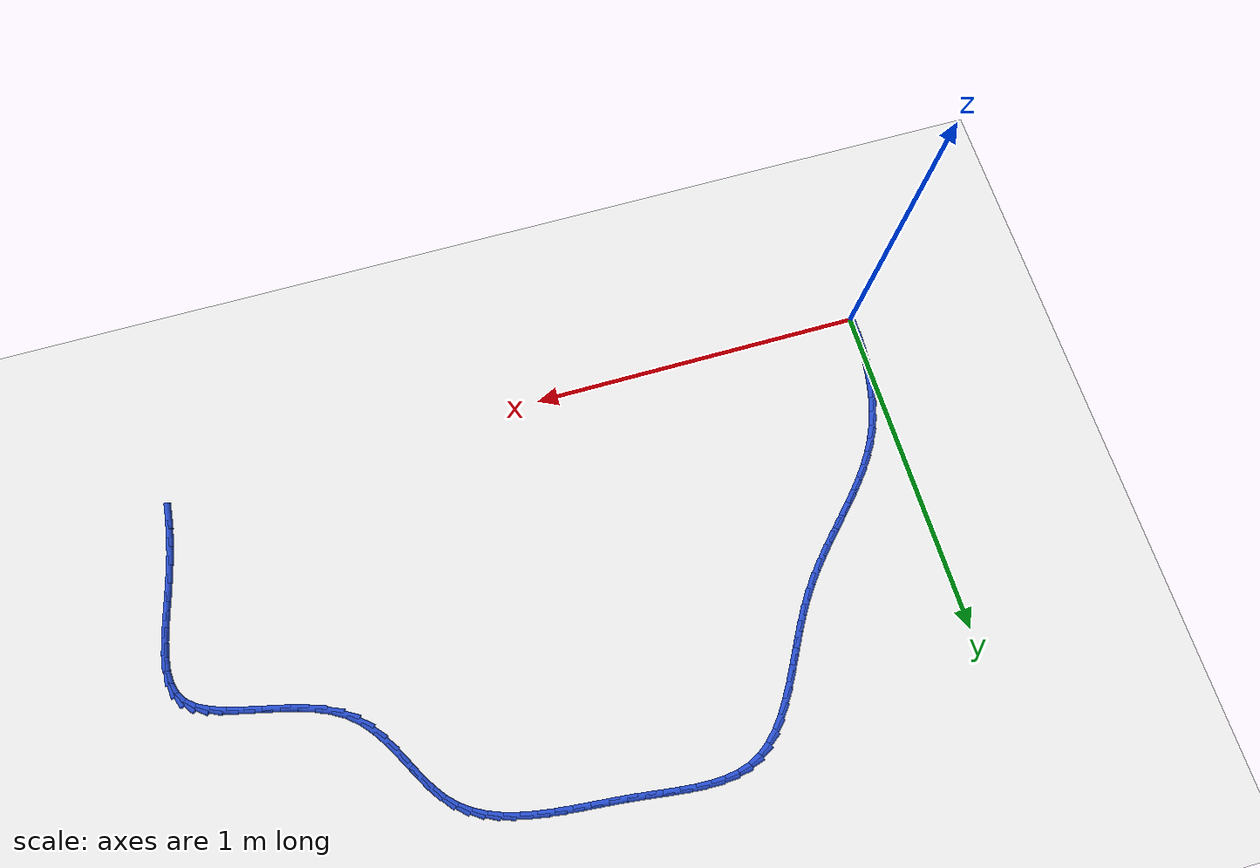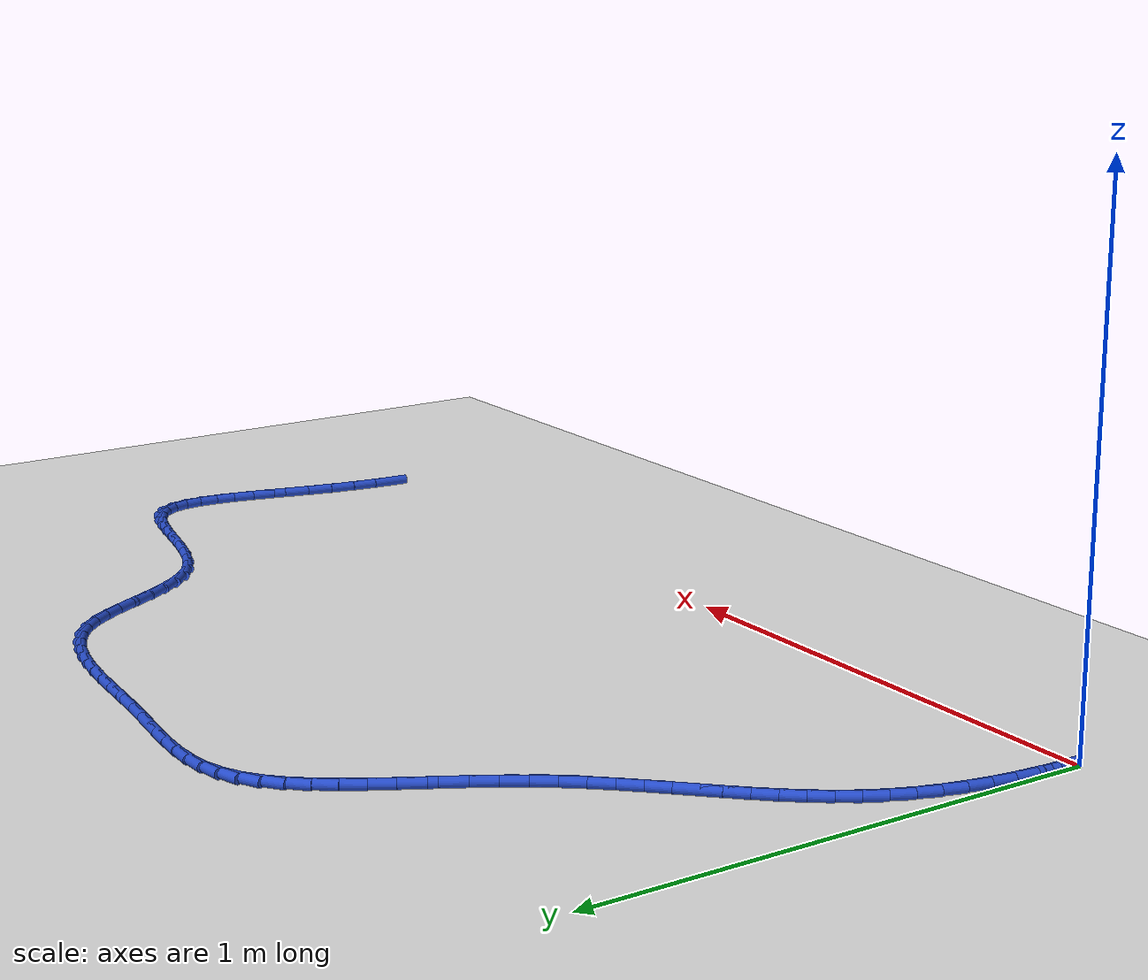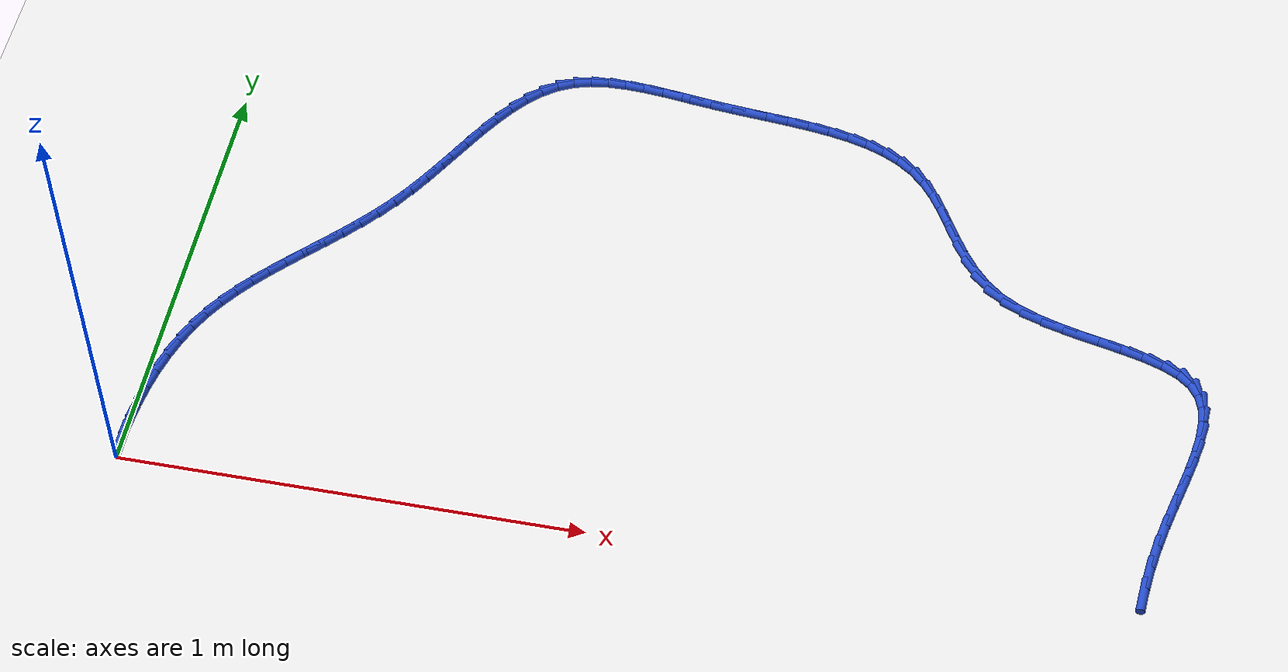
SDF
<sdf version="1.6">
 <world name="default">
  <model name="ground_plane">
   <static>1</static>
   <link name="link">
    <collision name="collision">
     <geometry><plane><normal>0 0 1</normal><size>100 100</size></plane></geometry>
     <surface><friction><ode><mu>100</mu><mu2>50</mu2></ode></friction></surface>
    </collision>
    <visual name="visual">
     <cast_shadows>0</cast_shadows>
     <geometry><plane><normal>0 0 1</normal><size>100 100</size></plane></geometry>
     <material>
      <script><uri>file://media/materials/scripts/gazebo.material</uri><name>Gazebo/WhiteGlow</name></script>
     </material>
    </visual>
   </link>
  </model>
  <model name="line">
   <link name="link_2">
    <pose>0.0016462573029969371 0.09117754841347032 0.01 0 1.57 1.4847414891385309</pose>
    <collision name="collision">
     <geometry><cylinder><radius>0.01</radius><length>0.08</length></cylinder></geometry>
    </collision>
    <visual name="visual">
     <material>
      <script><name>Gazebo/Blue</name><uri>file://media/materials/scripts/gazebo.material</uri></script>
     </material>
     <geometry><cylinder><radius>0.01</radius><length>0.08</length></cylinder></geometry>
    </visual>
   </link>
   <link name="link_3">
    <pose>0.005586826914313091 0.13685583567634896 0.01 0 1.57 1.434894409735333</pose>
    <collision name="collision">
     <geometry><cylinder><radius>0.01</radius><length>0.08</length></cylinder></geometry>
    </collision>
    <visual name="visual">
     <material>
      <script><name>Gazebo/Blue</name><uri>file://media/materials/scripts/gazebo.material</uri></script>
     </material>
     <geometry><cylinder><radius>0.01</radius><length>0.08</length></cylinder></geometry>
    </visual>
   </link>
   <link name="link_4">
    <pose>0.011783318623301148 0.18217010670031847 0.01 0 1.57 1.3807547910294875</pose>
    <collision name="collision">
     <geometry><cylinder><radius>0.01</radius><length>0.08</length></cylinder></geometry>
    </collision>
    <visual name="visual">
     <material>
      <script><name>Gazebo/Blue</name><uri>file://media/materials/scripts/gazebo.material</uri></script>
     </material>
     <geometry><cylinder><radius>0.01</radius><length>0.08</length></cylinder></geometry>
    </visual>
   </link>
   <link name="link_5">
    <pose>0.020368953523306203 0.2268025927781254 0.01 0 1.57 1.3215133082210457</pose>
    <collision name="collision">
     <geometry><cylinder><radius>0.01</radius><length>0.08</length></cylinder></geometry>
    </collision>
    <visual name="visual">
     <material>
      <script><name>Gazebo/Blue</name><uri>file://media/materials/scripts/gazebo.material</uri></script>
     </material>
     <geometry><cylinder><radius>0.01</radius><length>0.08</length></cylinder></geometry>
    </visual>
   </link>
   <link name="link_6">
    <pose>0.03147695270767335 0.27043552520251624 0.01 0 1.57 1.2563290872651045</pose>
    <collision name="collision">
     <geometry><cylinder><radius>0.01</radius><length>0.08</length></cylinder></geometry>
    </collision>
    <visual name="visual">
     <material>
      <script><name>Gazebo/Blue</name><uri>file://media/materials/scripts/gazebo.material</uri></script>
     </material>
     <geometry><cylinder><radius>0.01</radius><length>0.08</length></cylinder></geometry>
    </visual>
   </link>
   <link name="link_7">
    <pose>0.045240537269747666 0.3127511352662374 0.01 0 1.57 1.1843666638737467</pose>
    <collision name="collision">
     <geometry><cylinder><radius>0.01</radius><length>0.08</length></cylinder></geometry>
    </collision>
    <visual name="visual">
     <material>
      <script><name>Gazebo/Blue</name><uri>file://media/materials/scripts/gazebo.material</uri></script>
     </material>
     <geometry><cylinder><radius>0.01</radius><length>0.08</length></cylinder></geometry>
    </visual>
   </link>
   <link name="link_8">
    <pose>0.06179292830287421 0.3534316542620354 0.01 0 1.57 1.1049145525194537</pose>
    <collision name="collision">
     <geometry><cylinder><radius>0.01</radius><length>0.08</length></cylinder></geometry>
    </collision>
    <visual name="visual">
     <material>
      <script><name>Gazebo/Blue</name><uri>file://media/materials/scripts/gazebo.material</uri></script>
     </material>
     <geometry><cylinder><radius>0.01</radius><length>0.08</length></cylinder></geometry>
    </visual>
   </link>
   <link name="link_9">
    <pose>0.0812659469510282 0.3921611291601194 0.01 0 1.57 1.0234635631427023</pose>
    <collision name="collision">
     <geometry><cylinder><radius>0.01</radius><length>0.08</length></cylinder></geometry>
    </collision>
    <visual name="visual">
     <material>
      <script><name>Gazebo/Blue</name><uri>file://media/materials/scripts/gazebo.material</uri></script>
     </material>
     <geometry><cylinder><radius>0.01</radius><length>0.08</length></cylinder></geometry>
    </visual>
   </link>
   <link name="link_10">
    <pose>0.10362177506592832 0.4288436222014961 0.01 0 1.57 0.9525425751469052</pose>
    <collision name="collision">
     <geometry><cylinder><radius>0.01</radius><length>0.08</length></cylinder></geometry>
    </collision>
    <visual name="visual">
     <material>
      <script><name>Gazebo/Blue</name><uri>file://media/materials/scripts/gazebo.material</uri></script>
     </material>
     <geometry><cylinder><radius>0.01</radius><length>0.08</length></cylinder></geometry>
    </visual>
   </link>
   <link name="link_11">
    <pose>0.12849299767693662 0.4638106693165531 0.01 0 1.57 0.8946881497671825</pose>
    <collision name="collision">
     <geometry><cylinder><radius>0.01</radius><length>0.08</length></cylinder></geometry>
    </collision>
    <visual name="visual">
     <material>
      <script><name>Gazebo/Blue</name><uri>file://media/materials/scripts/gazebo.material</uri></script>
     </material>
     <geometry><cylinder><radius>0.01</radius><length>0.08</length></cylinder></geometry>
    </visual>
   </link>
   <link name="link_12">
    <pose>0.1554743128022478 0.4974429443500773 0.01 0 1.57 0.8503619094364911</pose>
    <collision name="collision">
     <geometry><cylinder><radius>0.01</radius><length>0.08</length></cylinder></geometry>
    </collision>
    <visual name="visual">
     <material>
      <script><name>Gazebo/Blue</name><uri>file://media/materials/scripts/gazebo.material</uri></script>
     </material>
     <geometry><cylinder><radius>0.01</radius><length>0.08</length></cylinder></geometry>
    </visual>
   </link>
   <link name="link_13">
    <pose>0.1841604184600568 0.530121121146856 0.01 0 1.57 0.8195151563991074</pose>
    <collision name="collision">
     <geometry><cylinder><radius>0.01</radius><length>0.08</length></cylinder></geometry>
    </collision>
    <visual name="visual">
     <material>
      <script><name>Gazebo/Blue</name><uri>file://media/materials/scripts/gazebo.material</uri></script>
     </material>
     <geometry><cylinder><radius>0.01</radius><length>0.08</length></cylinder></geometry>
    </visual>
   </link>
   <link name="link_14">
    <pose>0.2141460126685584 0.5622258735516754 0.01 0 1.57 0.8018354752819631</pose>
    <collision name="collision">
     <geometry><cylinder><radius>0.01</radius><length>0.08</length></cylinder></geometry>
    </collision>
    <visual name="visual">
     <material>
      <script><name>Gazebo/Blue</name><uri>file://media/materials/scripts/gazebo.material</uri></script>
     </material>
     <geometry><cylinder><radius>0.01</radius><length>0.08</length></cylinder></geometry>
    </visual>
   </link>
   <link name="link_15">
    <pose>0.2450257934459474 0.594137875409323 0.01 0 1.57 0.7969192548506218</pose>
    <collision name="collision">
     <geometry><cylinder><radius>0.01</radius><length>0.08</length></cylinder></geometry>
    </collision>
    <visual name="visual">
     <material>
      <script><name>Gazebo/Blue</name><uri>file://media/materials/scripts/gazebo.material</uri></script>
     </material>
     <geometry><cylinder><radius>0.01</radius><length>0.08</length></cylinder></geometry>
    </visual>
   </link>
   <link name="link_16">
    <pose>0.27639445881041885 0.6262378005645857 0.01 0 1.57 0.8043643810675651</pose>
    <collision name="collision">
     <geometry><cylinder><radius>0.01</radius><length>0.08</length></cylinder></geometry>
    </collision>
    <visual name="visual">
     <material>
      <script><name>Gazebo/Blue</name><uri>file://media/materials/scripts/gazebo.material</uri></script>
     </material>
     <geometry><cylinder><radius>0.01</radius><length>0.08</length></cylinder></geometry>
    </visual>
   </link>
   <link name="link_17">
    <pose>0.3078467067801674 0.6589063228622505 0.01 0 1.57 0.8237936344675746</pose>
    <collision name="collision">
     <geometry><cylinder><radius>0.01</radius><length>0.08</length></cylinder></geometry>
    </collision>
    <visual name="visual">
     <material>
      <script><name>Gazebo/Blue</name><uri>file://media/materials/scripts/gazebo.material</uri></script>
     </material>
     <geometry><cylinder><radius>0.01</radius><length>0.08</length></cylinder></geometry>
    </visual>
   </link>
   <link name="link_18">
    <pose>0.3389772353733878 0.6925241161471037 0.01 0 1.57 0.854821905325866</pose>
    <collision name="collision">
     <geometry><cylinder><radius>0.01</radius><length>0.08</length></cylinder></geometry>
    </collision>
    <visual name="visual">
     <material>
      <script><name>Gazebo/Blue</name><uri>file://media/materials/scripts/gazebo.material</uri></script>
     </material>
     <geometry><cylinder><radius>0.01</radius><length>0.08</length></cylinder></geometry>
    </visual>
   </link>
   <link name="link_19">
    <pose>0.369380742608275 0.7274718542639329 0.01 0 1.57 0.8969792504650191</pose>
    <collision name="collision">
     <geometry><cylinder><radius>0.01</radius><length>0.08</length></cylinder></geometry>
    </collision>
    <visual name="visual">
     <material>
      <script><name>Gazebo/Blue</name><uri>file://media/materials/scripts/gazebo.material</uri></script>
     </material>
     <geometry><cylinder><radius>0.01</radius><length>0.08</length></cylinder></geometry>
    </visual>
   </link>
   <link name="link_20">
    <pose>0.39865192650302383 0.7641302110575249 0.01 0 1.57 0.9495236927692865</pose>
    <collision name="collision">
     <geometry><cylinder><radius>0.01</radius><length>0.08</length></cylinder></geometry>
    </collision>
    <visual name="visual">
     <material>
      <script><name>Gazebo/Blue</name><uri>file://media/materials/scripts/gazebo.material</uri></script>
     </material>
     <geometry><cylinder><radius>0.01</radius><length>0.08</length></cylinder></geometry>
    </visual>
   </link>
   <link name="link_21">
    <pose>0.42638784451346956 0.8028766176585421 0.01 0 1.57 1.002469114185338</pose>
    <collision name="collision">
     <geometry><cylinder><radius>0.01</radius><length>0.08</length></cylinder></geometry>
    </collision>
    <visual name="visual">
     <material>
      <script><name>Gazebo/Blue</name><uri>file://media/materials/scripts/gazebo.material</uri></script>
     </material>
     <geometry><cylinder><radius>0.01</radius><length>0.08</length></cylinder></geometry>
    </visual>
   </link>
   <link name="link_22">
    <pose>0.452462841278048 0.8437074130898607 0.01 0 1.57 1.0388543029994732</pose>
    <collision name="collision">
     <geometry><cylinder><radius>0.01</radius><length>0.08</length></cylinder></geometry>
    </collision>
    <visual name="visual">
     <material>
      <script><name>Gazebo/Blue</name><uri>file://media/materials/scripts/gazebo.material</uri></script>
     </material>
     <geometry><cylinder><radius>0.01</radius><length>0.08</length></cylinder></geometry>
    </visual>
   </link>
   <link name="link_23">
    <pose>0.47728543689604785 0.8858847875745639 0.01 0 1.57 1.0580643525818694</pose>
    <collision name="collision">
     <geometry><cylinder><radius>0.01</radius><length>0.08</length></cylinder></geometry>
    </collision>
    <visual name="visual">
     <material>
      <script><name>Gazebo/Blue</name><uri>file://media/materials/scripts/gazebo.material</uri></script>
     </material>
     <geometry><cylinder><radius>0.01</radius><length>0.08</length></cylinder></geometry>
    </visual>
   </link>
   <link name="link_24">
    <pose>0.5013249210161304 0.9285874121645922 0.01 0 1.57 1.0607030882720003</pose>
    <collision name="collision">
     <geometry><cylinder><radius>0.01</radius><length>0.08</length></cylinder></geometry>
    </collision>
    <visual name="visual">
     <material>
      <script><name>Gazebo/Blue</name><uri>file://media/materials/scripts/gazebo.material</uri></script>
     </material>
     <geometry><cylinder><radius>0.01</radius><length>0.08</length></cylinder></geometry>
    </visual>
   </link>
   <link name="link_25">
    <pose>0.5250505832869565 0.9709939579118848 0.01 0 1.57 1.046419817949653</pose>
    <collision name="collision">
     <geometry><cylinder><radius>0.01</radius><length>0.08</length></cylinder></geometry>
    </collision>
    <visual name="visual">
     <material>
      <script><name>Gazebo/Blue</name><uri>file://media/materials/scripts/gazebo.material</uri></script>
     </material>
     <geometry><cylinder><radius>0.01</radius><length>0.08</length></cylinder></geometry>
    </visual>
   </link>
   <link name="link_26">
    <pose>0.5489317133571877 1.0122830958683822 0.01 0 1.57 1.0138088401947063</pose>
    <collision name="collision">
     <geometry><cylinder><radius>0.01</radius><length>0.08</length></cylinder></geometry>
    </collision>
    <visual name="visual">
     <material>
      <script><name>Gazebo/Blue</name><uri>file://media/materials/scripts/gazebo.material</uri></script>
     </material>
     <geometry><cylinder><radius>0.01</radius><length>0.08</length></cylinder></geometry>
    </visual>
   </link>
   <link name="link_27">
    <pose>0.5734376008754849 1.0516334970860242 0.01 0 1.57 0.9603143577371854</pose>
    <collision name="collision">
     <geometry><cylinder><radius>0.01</radius><length>0.08</length></cylinder></geometry>
    </collision>
    <visual name="visual">
     <material>
      <script><name>Gazebo/Blue</name><uri>file://media/materials/scripts/gazebo.material</uri></script>
     </material>
     <geometry><cylinder><radius>0.01</radius><length>0.08</length></cylinder></geometry>
    </visual>
   </link>
   <link name="link_28">
    <pose>0.5990375354905093 1.0882238326167508 0.01 0 1.57 0.8822432423449317</pose>
    <collision name="collision">
     <geometry><cylinder><radius>0.01</radius><length>0.08</length></cylinder></geometry>
    </collision>
    <visual name="visual">
     <material>
      <script><name>Gazebo/Blue</name><uri>file://media/materials/scripts/gazebo.material</uri></script>
     </material>
     <geometry><cylinder><radius>0.01</radius><length>0.08</length></cylinder></geometry>
    </visual>
   </link>
   <link name="link_29">
    <pose>0.6262008068509223 1.1212327735125018 0.01 0 1.57 0.7751968068318239</pose>
    <collision name="collision">
     <geometry><cylinder><radius>0.01</radius><length>0.08</length></cylinder></geometry>
    </collision>
    <visual name="visual">
     <material>
      <script><name>Gazebo/Blue</name><uri>file://media/materials/scripts/gazebo.material</uri></script>
     </material>
     <geometry><cylinder><radius>0.01</radius><length>0.08</length></cylinder></geometry>
    </visual>
   </link>
   <link name="link_30">
    <pose>0.6553967046053845 1.149838990825217 0.01 0 1.57 0.6355557080730524</pose>
    <collision name="collision">
     <geometry><cylinder><radius>0.01</radius><length>0.08</length></cylinder></geometry>
    </collision>
    <visual name="visual">
     <material>
      <script><name>Gazebo/Blue</name><uri>file://media/materials/scripts/gazebo.material</uri></script>
     </material>
     <geometry><cylinder><radius>0.01</radius><length>0.08</length></cylinder></geometry>
    </visual>
   </link>
   <link name="link_31">
    <pose>0.6870945184025575 1.1732211556068364 0.01 0 1.57 0.463774441154091</pose>
    <collision name="collision">
     <geometry><cylinder><radius>0.01</radius><length>0.08</length></cylinder></geometry>
    </collision>
    <visual name="visual">
     <material>
      <script><name>Gazebo/Blue</name><uri>file://media/materials/scripts/gazebo.material</uri></script>
     </material>
     <geometry><cylinder><radius>0.01</radius><length>0.08</length></cylinder></geometry>
    </visual>
   </link>
   <link name="link_32">
    <pose>0.7217623127674697 1.1905605493766551 0.01 0 1.57 0.2828826860031082</pose>
    <collision name="collision">
     <geometry><cylinder><radius>0.01</radius><length>0.08</length></cylinder></geometry>
    </collision>
    <visual name="visual">
     <material>
      <script><name>Gazebo/Blue</name><uri>file://media/materials/scripts/gazebo.material</uri></script>
     </material>
     <geometry><cylinder><radius>0.01</radius><length>0.08</length></cylinder></geometry>
    </visual>
   </link>
   <link name="link_33">
    <pose>0.7596209358070171 1.2015652171349809 0.01 0 1.57 0.13521582477753552</pose>
    <collision name="collision">
     <geometry><cylinder><radius>0.01</radius><length>0.08</length></cylinder></geometry>
    </collision>
    <visual name="visual">
     <material>
      <script><name>Gazebo/Blue</name><uri>file://media/materials/scripts/gazebo.material</uri></script>
     </material>
     <geometry><cylinder><radius>0.01</radius><length>0.08</length></cylinder></geometry>
    </visual>
   </link>
   <link name="link_34">
    <pose>0.8003456835745526 1.207105654584084 0.01 0 1.57 0.025508180863463757</pose>
    <collision name="collision">
     <geometry><cylinder><radius>0.01</radius><length>0.08</length></cylinder></geometry>
    </collision>
    <visual name="visual">
     <material>
      <script><name>Gazebo/Blue</name><uri>file://media/materials/scripts/gazebo.material</uri></script>
     </material>
     <geometry><cylinder><radius>0.01</radius><length>0.08</length></cylinder></geometry>
    </visual>
   </link>
   <link name="link_35">
    <pose>0.8435389594867071 1.2082076755048277 0.01 0 1.57 -0.05100228534012227</pose>
    <collision name="collision">
     <geometry><cylinder><radius>0.01</radius><length>0.08</length></cylinder></geometry>
    </collision>
    <visual name="visual">
     <material>
      <script><name>Gazebo/Blue</name><uri>file://media/materials/scripts/gazebo.material</uri></script>
     </material>
     <geometry><cylinder><radius>0.01</radius><length>0.08</length></cylinder></geometry>
    </visual>
   </link>
   <link name="link_36">
    <pose>0.8888031669601106 1.2058970936780748 0.01 0 1.57 -0.09974493926160515</pose>
    <collision name="collision">
     <geometry><cylinder><radius>0.01</radius><length>0.08</length></cylinder></geometry>
    </collision>
    <visual name="visual">
     <material>
      <script><name>Gazebo/Blue</name><uri>file://media/materials/scripts/gazebo.material</uri></script>
     </material>
     <geometry><cylinder><radius>0.01</radius><length>0.08</length></cylinder></geometry>
    </visual>
   </link>
   <link name="link_37">
    <pose>0.9357407094113933 1.2011997228846887 0.01 0 1.57 -0.12500203350022768</pose>
    <collision name="collision">
     <geometry><cylinder><radius>0.01</radius><length>0.08</length></cylinder></geometry>
    </collision>
    <visual name="visual">
     <material>
      <script><name>Gazebo/Blue</name><uri>file://media/materials/scripts/gazebo.material</uri></script>
     </material>
     <geometry><cylinder><radius>0.01</radius><length>0.08</length></cylinder></geometry>
    </visual>
   </link>
   <link name="link_38">
    <pose>0.9839539902571846 1.195141376905531 0.01 0 1.57 -0.1295078133055338</pose>
    <collision name="collision">
     <geometry><cylinder><radius>0.01</radius><length>0.08</length></cylinder></geometry>
    </collision>
    <visual name="visual">
     <material>
      <script><name>Gazebo/Blue</name><uri>file://media/materials/scripts/gazebo.material</uri></script>
     </material>
     <geometry><cylinder><radius>0.01</radius><length>0.08</length></cylinder></geometry>
    </visual>
   </link>
   <link name="link_39">
    <pose>1.033045412914115 1.1887478695214653 0.01 0 1.57 -0.11509646648038017</pose>
    <collision name="collision">
     <geometry><cylinder><radius>0.01</radius><length>0.08</length></cylinder></geometry>
    </collision>
    <visual name="visual">
     <material>
      <script><name>Gazebo/Blue</name><uri>file://media/materials/scripts/gazebo.material</uri></script>
     </material>
     <geometry><cylinder><radius>0.01</radius><length>0.08</length></cylinder></geometry>
    </visual>
   </link>
   <link name="link_40">
    <pose>1.0826175750169273 1.1830169602899379 0.01 0 1.57 -0.09677783158054479</pose>
    <collision name="collision">
     <geometry><cylinder><radius>0.01</radius><length>0.08</length></cylinder></geometry>
    </collision>
    <visual name="visual">
     <material>
      <script><name>Gazebo/Blue</name><uri>file://media/materials/scripts/gazebo.material</uri></script>
     </material>
     <geometry><cylinder><radius>0.01</radius><length>0.08</length></cylinder></geometry>
    </visual>
   </link>
   <link name="link_41">
    <pose>1.132278270318947 1.178195845038016 0.01 0 1.57 -0.0904752718898803</pose>
    <collision name="collision">
     <geometry><cylinder><radius>0.01</radius><length>0.08</length></cylinder></geometry>
    </collision>
    <visual name="visual">
     <material>
      <script><name>Gazebo/Blue</name><uri>file://media/materials/scripts/gazebo.material</uri></script>
     </material>
     <geometry><cylinder><radius>0.01</radius><length>0.08</length></cylinder></geometry>
    </visual>
   </link>
   <link name="link_42">
    <pose>1.1816409292481973 1.1737175188533193 0.01 0 1.57 -0.09713606989486073</pose>
    <collision name="collision">
     <geometry><cylinder><radius>0.01</radius><length>0.08</length></cylinder></geometry>
    </collision>
    <visual name="visual">
     <material>
      <script><name>Gazebo/Blue</name><uri>file://media/materials/scripts/gazebo.material</uri></script>
     </material>
     <geometry><cylinder><radius>0.01</radius><length>0.08</length></cylinder></geometry>
    </visual>
   </link>
   <link name="link_43">
    <pose>1.2303192647450185 1.1689741687676656 0.01 0 1.57 -0.11742526869978262</pose>
    <collision name="collision">
     <geometry><cylinder><radius>0.01</radius><length>0.08</length></cylinder></geometry>
    </collision>
    <visual name="visual">
     <material>
      <script><name>Gazebo/Blue</name><uri>file://media/materials/scripts/gazebo.material</uri></script>
     </material>
     <geometry><cylinder><radius>0.01</radius><length>0.08</length></cylinder></geometry>
    </visual>
   </link>
   <link name="link_44">
    <pose>1.2779269897497514 1.1633579818128734 0.01 0 1.57 -0.15257967717023743</pose>
    <collision name="collision">
     <geometry><cylinder><radius>0.01</radius><length>0.08</length></cylinder></geometry>
    </collision>
    <visual name="visual">
     <material>
      <script><name>Gazebo/Blue</name><uri>file://media/materials/scripts/gazebo.material</uri></script>
     </material>
     <geometry><cylinder><radius>0.01</radius><length>0.08</length></cylinder></geometry>
    </visual>
   </link>
   <link name="link_45">
    <pose>1.324077817202735 1.1562611450207612 0.01 0 1.57 -0.2044118736837749</pose>
    <collision name="collision">
     <geometry><cylinder><radius>0.01</radius><length>0.08</length></cylinder></geometry>
    </collision>
    <visual name="visual">
     <material>
      <script><name>Gazebo/Blue</name><uri>file://media/materials/scripts/gazebo.material</uri></script>
     </material>
     <geometry><cylinder><radius>0.01</radius><length>0.08</length></cylinder></geometry>
    </visual>
   </link>
   <link name="link_46">
    <pose>1.3683854600443102 1.1470758454231471 0.01 0 1.57 -0.27520421583713045</pose>
    <collision name="collision">
     <geometry><cylinder><radius>0.01</radius><length>0.08</length></cylinder></geometry>
    </collision>
    <visual name="visual">
     <material>
      <script><name>Gazebo/Blue</name><uri>file://media/materials/scripts/gazebo.material</uri></script>
     </material>
     <geometry><cylinder><radius>0.01</radius><length>0.08</length></cylinder></geometry>
    </visual>
   </link>
   <link name="link_47">
    <pose>1.4104636312148158 1.1351942700518503 0.01 0 1.57 -0.36734629845980316</pose>
    <collision name="collision">
     <geometry><cylinder><radius>0.01</radius><length>0.08</length></cylinder></geometry>
    </collision>
    <visual name="visual">
     <material>
      <script><name>Gazebo/Blue</name><uri>file://media/materials/scripts/gazebo.material</uri></script>
     </material>
     <geometry><cylinder><radius>0.01</radius><length>0.08</length></cylinder></geometry>
    </visual>
   </link>
   <link name="link_48">
    <pose>1.4499260436545929 1.1200086059386878 0.01 0 1.57 -0.48249776748284084</pose>
    <collision name="collision">
     <geometry><cylinder><radius>0.01</radius><length>0.08</length></cylinder></geometry>
    </collision>
    <visual name="visual">
     <material>
      <script><name>Gazebo/Blue</name><uri>file://media/materials/scripts/gazebo.material</uri></script>
     </material>
     <geometry><cylinder><radius>0.01</radius><length>0.08</length></cylinder></geometry>
    </visual>
   </link>
   <link name="link_49">
    <pose>1.4863864103039797 1.100911040115479 0.01 0 1.57 -0.6201373391399486</pose>
    <collision name="collision">
     <geometry><cylinder><radius>0.01</radius><length>0.08</length></cylinder></geometry>
    </collision>
    <visual name="visual">
     <material>
      <script><name>Gazebo/Blue</name><uri>file://media/materials/scripts/gazebo.material</uri></script>
     </material>
     <geometry><cylinder><radius>0.01</radius><length>0.08</length></cylinder></geometry>
    </visual>
   </link>
   <link name="link_50">
    <pose>1.5194584441033183 1.0772937596140424 0.01 0 1.57 -0.7754929869266919</pose>
    <collision name="collision">
     <geometry><cylinder><radius>0.01</radius><length>0.08</length></cylinder></geometry>
    </collision>
    <visual name="visual">
     <material>
      <script><name>Gazebo/Blue</name><uri>file://media/materials/scripts/gazebo.material</uri></script>
     </material>
     <geometry><cylinder><radius>0.01</radius><length>0.08</length></cylinder></geometry>
    </visual>
   </link>
   <link name="link_51">
    <pose>1.548765729269281 1.0485613863096712 0.01 0 1.57 -0.9178784529399259</pose>
    <collision name="collision">
     <geometry><cylinder><radius>0.01</radius><length>0.08</length></cylinder></geometry>
    </collision>
    <visual name="visual">
     <material>
      <script><name>Gazebo/Blue</name><uri>file://media/materials/scripts/gazebo.material</uri></script>
     </material>
     <geometry><cylinder><radius>0.01</radius><length>0.08</length></cylinder></geometry>
    </visual>
   </link>
   <link name="link_52">
    <pose>1.5745310089407965 1.0148733023704164 0.01 0 1.57 -1.0110367568539764</pose>
    <collision name="collision">
     <geometry><cylinder><radius>0.01</radius><length>0.08</length></cylinder></geometry>
    </collision>
    <visual name="visual">
     <material>
      <script><name>Gazebo/Blue</name><uri>file://media/materials/scripts/gazebo.material</uri></script>
     </material>
     <geometry><cylinder><radius>0.01</radius><length>0.08</length></cylinder></geometry>
    </visual>
   </link>
   <link name="link_53">
    <pose>1.5979097016994699 0.9775637809056317 0.01 0 1.57 -1.05817097421774</pose>
    <collision name="collision">
     <geometry><cylinder><radius>0.01</radius><length>0.08</length></cylinder></geometry>
    </collision>
    <visual name="visual">
     <material>
      <script><name>Gazebo/Blue</name><uri>file://media/materials/scripts/gazebo.material</uri></script>
     </material>
     <geometry><cylinder><radius>0.01</radius><length>0.08</length></cylinder></geometry>
    </visual>
   </link>
   <link name="link_54">
    <pose>1.6201379231485131 0.9380687490356378 0.01 0 1.57 -1.0645384903842996</pose>
    <collision name="collision">
     <geometry><cylinder><radius>0.01</radius><length>0.08</length></cylinder></geometry>
    </collision>
    <visual name="visual">
     <material>
      <script><name>Gazebo/Blue</name><uri>file://media/materials/scripts/gazebo.material</uri></script>
     </material>
     <geometry><cylinder><radius>0.01</radius><length>0.08</length></cylinder></geometry>
    </visual>
   </link>
   <link name="link_55">
    <pose>1.6424517888911372 0.897824133880754 0.01 0 1.57 -1.0322253135391355</pose>
    <collision name="collision">
     <geometry><cylinder><radius>0.01</radius><length>0.08</length></cylinder></geometry>
    </collision>
    <visual name="visual">
     <material>
      <script><name>Gazebo/Blue</name><uri>file://media/materials/scripts/gazebo.material</uri></script>
     </material>
     <geometry><cylinder><radius>0.01</radius><length>0.08</length></cylinder></geometry>
    </visual>
   </link>
   <link name="link_56">
    <pose>1.6660874145305553 0.8582658625613009 0.01 0 1.57 -0.9602801312883518</pose>
    <collision name="collision">
     <geometry><cylinder><radius>0.01</radius><length>0.08</length></cylinder></geometry>
    </collision>
    <visual name="visual">
     <material>
      <script><name>Gazebo/Blue</name><uri>file://media/materials/scripts/gazebo.material</uri></script>
     </material>
     <geometry><cylinder><radius>0.01</radius><length>0.08</length></cylinder></geometry>
    </visual>
   </link>
   <link name="link_57">
    <pose>1.69228091566998 0.8208298621975995 0.01 0 1.57 -0.8462372940151093</pose>
    <collision name="collision">
     <geometry><cylinder><radius>0.01</radius><length>0.08</length></cylinder></geometry>
    </collision>
    <visual name="visual">
     <material>
      <script><name>Gazebo/Blue</name><uri>file://media/materials/scripts/gazebo.material</uri></script>
     </material>
     <geometry><cylinder><radius>0.01</radius><length>0.08</length></cylinder></geometry>
    </visual>
   </link>
   <link name="link_58">
    <pose>1.722268407912623 0.7869520599099691 0.01 0 1.57 -0.6898736377977203</pose>
    <collision name="collision">
     <geometry><cylinder><radius>0.01</radius><length>0.08</length></cylinder></geometry>
    </collision>
    <visual name="visual">
     <material>
      <script><name>Gazebo/Blue</name><uri>file://media/materials/scripts/gazebo.material</uri></script>
     </material>
     <geometry><cylinder><radius>0.01</radius><length>0.08</length></cylinder></geometry>
    </visual>
   </link>
   <link name="link_59">
    <pose>1.757280322150871 0.7580629000448772 0.01 0 1.57 -0.5216028524493134</pose>
    <collision name="collision">
     <geometry><cylinder><radius>0.01</radius><length>0.08</length></cylinder></geometry>
    </collision>
    <visual name="visual">
     <material>
      <script><name>Gazebo/Blue</name><uri>file://media/materials/scripts/gazebo.material</uri></script>
     </material>
     <geometry><cylinder><radius>0.01</radius><length>0.08</length></cylinder></geometry>
    </visual>
   </link>
   <link name="link_60">
    <pose>1.7977378138464941 0.7348122992653512 0.01 0 1.57 -0.3934129438212262</pose>
    <collision name="collision">
     <geometry><cylinder><radius>0.01</radius><length>0.08</length></cylinder></geometry>
    </collision>
    <visual name="visual">
     <material>
      <script><name>Gazebo/Blue</name><uri>file://media/materials/scripts/gazebo.material</uri></script>
     </material>
     <geometry><cylinder><radius>0.01</radius><length>0.08</length></cylinder></geometry>
    </visual>
   </link>
   <link name="link_61">
    <pose>1.8424203519500384 0.7162668050611308 0.01 0 1.57 -0.3052897751053289</pose>
    <collision name="collision">
     <geometry><cylinder><radius>0.01</radius><length>0.08</length></cylinder></geometry>
    </collision>
    <visual name="visual">
     <material>
      <script><name>Gazebo/Blue</name><uri>file://media/materials/scripts/gazebo.material</uri></script>
     </material>
     <geometry><cylinder><radius>0.01</radius><length>0.08</length></cylinder></geometry>
    </visual>
   </link>
   <link name="link_62">
    <pose>1.8899086420144058 0.7013012621611341 0.01 0 1.57 -0.25059487909021544</pose>
    <collision name="collision">
     <geometry><cylinder><radius>0.01</radius><length>0.08</length></cylinder></geometry>
    </collision>
    <visual name="visual">
     <material>
      <script><name>Gazebo/Blue</name><uri>file://media/materials/scripts/gazebo.material</uri></script>
     </material>
     <geometry><cylinder><radius>0.01</radius><length>0.08</length></cylinder></geometry>
    </visual>
   </link>
   <link name="link_63">
    <pose>1.9387833895924984 0.6887905152942778 0.01 0 1.57 -0.22504660852469163</pose>
    <collision name="collision">
     <geometry><cylinder><radius>0.01</radius><length>0.08</length></cylinder></geometry>
    </collision>
    <visual name="visual">
     <material>
      <script><name>Gazebo/Blue</name><uri>file://media/materials/scripts/gazebo.material</uri></script>
     </material>
     <geometry><cylinder><radius>0.01</radius><length>0.08</length></cylinder></geometry>
    </visual>
   </link>
   <link name="link_64">
    <pose>1.9876253002372177 0.6776094091894794 0.01 0 1.57 -0.22761045439036845</pose>
    <collision name="collision">
     <geometry><cylinder><radius>0.01</radius><length>0.08</length></cylinder></geometry>
    </collision>
    <visual name="visual">
     <material>
      <script><name>Gazebo/Blue</name><uri>file://media/materials/scripts/gazebo.material</uri></script>
     </material>
     <geometry><cylinder><radius>0.01</radius><length>0.08</length></cylinder></geometry>
    </visual>
   </link>
   <link name="link_65">
    <pose>2.035015079501467 0.666632788575657 0.01 0 1.57 -0.26114189593670845</pose>
    <collision name="collision">
     <geometry><cylinder><radius>0.01</radius><length>0.08</length></cylinder></geometry>
    </collision>
    <visual name="visual">
     <material>
      <script><name>Gazebo/Blue</name><uri>file://media/materials/scripts/gazebo.material</uri></script>
     </material>
     <geometry><cylinder><radius>0.01</radius><length>0.08</length></cylinder></geometry>
    </visual>
   </link>
   <link name="link_66">
    <pose>2.079533432938148 0.654735498181727 0.01 0 1.57 -0.33364749427212603</pose>
    <collision name="collision">
     <geometry><cylinder><radius>0.01</radius><length>0.08</length></cylinder></geometry>
    </collision>
    <visual name="visual">
     <material>
      <script><name>Gazebo/Blue</name><uri>file://media/materials/scripts/gazebo.material</uri></script>
     </material>
     <geometry><cylinder><radius>0.01</radius><length>0.08</length></cylinder></geometry>
    </visual>
   </link>
   <link name="link_67">
    <pose>2.119761066100162 0.6407923827366071 0.01 0 1.57 -0.4602880261965378</pose>
    <collision name="collision">
     <geometry><cylinder><radius>0.01</radius><length>0.08</length></cylinder></geometry>
    </collision>
    <visual name="visual">
     <material>
      <script><name>Gazebo/Blue</name><uri>file://media/materials/scripts/gazebo.material</uri></script>
     </material>
     <geometry><cylinder><radius>0.01</radius><length>0.08</length></cylinder></geometry>
    </visual>
   </link>
   <link name="link_68">
    <pose>2.1542786845404116 0.6236782869692146 0.01 0 1.57 -0.6635002776766473</pose>
    <collision name="collision">
     <geometry><cylinder><radius>0.01</radius><length>0.08</length></cylinder></geometry>
    </collision>
    <visual name="visual">
     <material>
      <script><name>Gazebo/Blue</name><uri>file://media/materials/scripts/gazebo.material</uri></script>
     </material>
     <geometry><cylinder><radius>0.01</radius><length>0.08</length></cylinder></geometry>
    </visual>
   </link>
   <link name="link_69">
    <pose>2.181666993811799 0.6022680556084669 0.01 0 1.57 -0.9549746863354363</pose>
    <collision name="collision">
     <geometry><cylinder><radius>0.01</radius><length>0.08</length></cylinder></geometry>
    </collision>
    <visual name="visual">
     <material>
      <script><name>Gazebo/Blue</name><uri>file://media/materials/scripts/gazebo.material</uri></script>
     </material>
     <geometry><cylinder><radius>0.01</radius><length>0.08</length></cylinder></geometry>
    </visual>
   </link>
   <link name="link_70">
    <pose>2.2006069677996667 0.5755023066717475 0.01 0 1.57 -1.2522200234440308</pose>
    <collision name="collision">
     <geometry><cylinder><radius>0.01</radius><length>0.08</length></cylinder></geometry>
    </collision>
    <visual name="visual">
     <material>
      <script><name>Gazebo/Blue</name><uri>file://media/materials/scripts/gazebo.material</uri></script>
     </material>
     <geometry><cylinder><radius>0.01</radius><length>0.08</length></cylinder></geometry>
    </visual>
   </link>
   <link name="link_71">
    <pose>2.2112353338651984 0.5432765927103242 0.01 0 1.57 -1.47527466905708</pose>
    <collision name="collision">
     <geometry><cylinder><radius>0.01</radius><length>0.08</length></cylinder></geometry>
    </collision>
    <visual name="visual">
     <material>
      <script><name>Gazebo/Blue</name><uri>file://media/materials/scripts/gazebo.material</uri></script>
     </material>
     <geometry><cylinder><radius>0.01</radius><length>0.08</length></cylinder></geometry>
    </visual>
   </link>
   <link name="link_72">
    <pose>2.2147871006642457 0.5062069088185212 0.01 0 1.57 1.5160343552844908</pose>
    <collision name="collision">
     <geometry><cylinder><radius>0.01</radius><length>0.08</length></cylinder></geometry>
    </collision>
    <visual name="visual">
     <material>
      <script><name>Gazebo/Blue</name><uri>file://media/materials/scripts/gazebo.material</uri></script>
     </material>
     <geometry><cylinder><radius>0.01</radius><length>0.08</length></cylinder></geometry>
    </visual>
   </link>
   <link name="link_73">
    <pose>2.2125242665503366 0.4649269545954397 0.01 0 1.57 1.4200109994187369</pose>
    <collision name="collision">
     <geometry><cylinder><radius>0.01</radius><length>0.08</length></cylinder></geometry>
    </collision>
    <visual name="visual">
     <material>
      <script><name>Gazebo/Blue</name><uri>file://media/materials/scripts/gazebo.material</uri></script>
     </material>
     <geometry><cylinder><radius>0.01</radius><length>0.08</length></cylinder></geometry>
    </visual>
   </link>
   <link name="link_74">
    <pose>2.2057088298769982 0.4200704296401827 0.01 0 1.57 1.362438640082577</pose>
    <collision name="collision">
     <geometry><cylinder><radius>0.01</radius><length>0.08</length></cylinder></geometry>
    </collision>
    <visual name="visual">
     <material>
      <script><name>Gazebo/Blue</name><uri>file://media/materials/scripts/gazebo.material</uri></script>
     </material>
     <geometry><cylinder><radius>0.01</radius><length>0.08</length></cylinder></geometry>
    </visual>
   </link>
   <link name="link_75">
    <pose>2.195602788997757 0.3722710335518518 0.01 0 1.57 1.333203278508561</pose>
    <collision name="collision">
     <geometry><cylinder><radius>0.01</radius><length>0.08</length></cylinder></geometry>
    </collision>
    <visual name="visual">
     <material>
      <script><name>Gazebo/Blue</name><uri>file://media/materials/scripts/gazebo.material</uri></script>
     </material>
     <geometry><cylinder><radius>0.01</radius><length>0.08</length></cylinder></geometry>
    </visual>
   </link>
   <link name="link_76">
    <pose>2.1834681422661406 0.3221624659295486 0.01 0 1.57 1.326631264381721</pose>
    <collision name="collision">
     <geometry><cylinder><radius>0.01</radius><length>0.08</length></cylinder></geometry>
    </collision>
    <visual name="visual">
     <material>
      <script><name>Gazebo/Blue</name><uri>file://media/materials/scripts/gazebo.material</uri></script>
     </material>
     <geometry><cylinder><radius>0.01</radius><length>0.08</length></cylinder></geometry>
    </visual>
   </link>
   <link name="link_77">
    <pose>2.1705668880356765 0.27037842637237625 0.01 0 1.57 1.340131518238617</pose>
    <collision name="collision">
     <geometry><cylinder><radius>0.01</radius><length>0.08</length></cylinder></geometry>
    </collision>
    <visual name="visual">
     <material>
      <script><name>Gazebo/Blue</name><uri>file://media/materials/scripts/gazebo.material</uri></script>
     </material>
     <geometry><cylinder><radius>0.01</radius><length>0.08</length></cylinder></geometry>
    </visual>
   </link>
   <link name="link_78">
    <pose>2.1581610246598917 0.2175526144794359 0.01 0 1.57 1.3733345325205566</pose>
    <collision name="collision">
     <geometry><cylinder><radius>0.01</radius><length>0.08</length></cylinder></geometry>
    </collision>
    <visual name="visual">
     <material>
      <script><name>Gazebo/Blue</name><uri>file://media/materials/scripts/gazebo.material</uri></script>
     </material>
     <geometry><cylinder><radius>0.01</radius><length>0.08</length></cylinder></geometry>
    </visual>
   </link>
   <link name="link_79">
    <pose>2.1475104564859304 0.1643181088281255 0.01 0 1.57 1.41950622469052</pose>
    <collision name="collision">
     <geometry><cylinder><radius>0.01</radius><length>0.08</length></cylinder></geometry>
    </collision>
    <visual name="visual">
     <material>
      <script><name>Gazebo/Blue</name><uri>file://media/materials/scripts/gazebo.material</uri></script>
     </material>
     <geometry><cylinder><radius>0.01</radius><length>0.08</length></cylinder></geometry>
    </visual>
   </link>
   <link name="link_80">
    <pose>2.139407661966157 0.11116936300002635 0.01 0 1.57 1.4612317828090744</pose>
    <collision name="collision">
     <geometry><cylinder><radius>0.01</radius><length>0.08</length></cylinder></geometry>
    </collision>
    <visual name="visual">
     <material>
      <script><name>Gazebo/Blue</name><uri>file://media/materials/scripts/gazebo.material</uri></script>
     </material>
     <geometry><cylinder><radius>0.01</radius><length>0.08</length></cylinder></geometry>
    </visual>
   </link>
   <link name="link_81">
    <pose>2.1335904485323844 0.05828804566804636 0.01 0 1.57 1.495884533341911</pose>
    <collision name="collision">
     <geometry><cylinder><radius>0.01</radius><length>0.08</length></cylinder></geometry>
    </collision>
    <visual name="visual">
     <material>
      <script><name>Gazebo/Blue</name><uri>file://media/materials/scripts/gazebo.material</uri></script>
     </material>
     <geometry><cylinder><radius>0.01</radius><length>0.08</length></cylinder></geometry>
    </visual>
   </link>
   <link name="link_161">
    <pose>-0.0001867113818264897 0.04552035991090482 0.01 0 1.57 -1.5666946383389444</pose>
    <collision name="collision">
     <geometry><cylinder><radius>0.01</radius><length>0.08</length></cylinder></geometry>
    </collision>
    <visual name="visual">
     <material>
      <script><name>Gazebo/Blue</name><uri>file://media/materials/scripts/gazebo.material</uri></script>
     </material>
     <geometry><cylinder><radius>0.01</radius><length>0.08</length></cylinder></geometry>
    </visual>
   </link>
  </model>
 </world>
</sdf>
